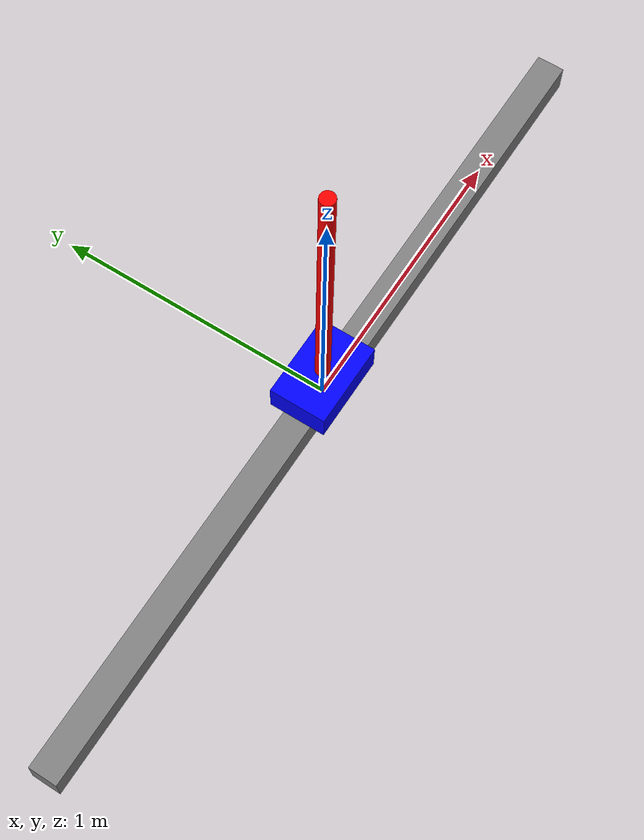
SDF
<?xml version="1.0" ?>
<sdf version="1.8">
    <model name="cart_pole">
        <link name="rail">
            <pose>0 0 0 0 0 0</pose>
            <inertial>
                <mass>1.0</mass>
                <inertia>
                    <ixx>0.01</ixx>
                    <ixy>0</ixy>
                    <ixz>0</ixz>
                    <iyy>0.01</iyy>
                    <iyz>0</iyz>
                    <izz>0.01</izz>
                </inertia>
            </inertial>
            <visual name="rail_visual">
                <geometry>
                    <box>
                        <size>3.0 0.1 0.1</size>
                    </box>
                </geometry>
                <material>
                    <ambient>0.5 0.5 0.5 1</ambient>
                    <diffuse>0.5 0.5 0.5 1</diffuse>
                    <specular>0.1 0.1 0.1 1</specular>
                </material>
            </visual>
            <collision name="rail_collision">
                <geometry>
                    <box>
                        <size>3.0 0.1 0.1</size>
                    </box>
                </geometry>
            </collision>
        </link>

        <link name="cart">
            <pose relative_to="rail">0 0 0.1 0 0 0</pose>
            <inertial>
                <mass>1.0</mass>
                <inertia>
                    <ixx>0.01</ixx>
                    <ixy>0</ixy>
                    <ixz>0</ixz>
                    <iyy>0.01</iyy>
                    <iyz>0</iyz>
                    <izz>0.01</izz>
                </inertia>
            </inertial>
            <visual name="cart_visual">
                <geometry>
                    <box>
                        <size>0.3 0.2 0.1</size>
                    </box>
                </geometry>
                <material>
                    <ambient>0 0 1 1</ambient>
                    <diffuse>0 0 1 1</diffuse>
                    <specular>0.1 0.1 0.1 1</specular>
                </material>
            </visual>
            <collision name="cart_collision">
                <geometry>
                    <box>
                        <size>0.3 0.2 0.1</size>
                    </box>
                </geometry>
            </collision>
        </link>

        <link name="pole">
            <pose relative_to="cart">0 0 0.05 0 0 0</pose>
            <inertial>
                <pose>0 0 0.5 0 0 0</pose>
                <mass>0.1</mass>
                <inertia>
                    <ixx>0.0083</ixx>
                    <ixy>0</ixy>
                    <ixz>0</ixz>
                    <iyy>0.0083</iyy>
                    <iyz>0</iyz>
                    <izz>0.001</izz>
                </inertia>
            </inertial>
            <visual name="pole_visual">
                <pose>0 0 0.5 0 0 0</pose>
                <geometry>
                    <cylinder>
                        <radius>0.025</radius>
                        <length>1.0</length>
                    </cylinder>
                </geometry>
                <material>
                    <ambient>1 0 0 1</ambient>
                    <diffuse>1 0 0 1</diffuse>
                    <specular>0.1 0.1 0.1 1</specular>
                </material>
            </visual>
            <collision name="pole_collision">
                <pose>0 0 0.5 0 0 0</pose>
                <geometry>
                    <cylinder>
                        <radius>0.025</radius>
                        <length>1.0</length>
                    </cylinder>
                </geometry>
            </collision>
        </link>

        <joint name="world_fixed" type="fixed">
            <parent>world</parent>
            <child>rail</child>
        </joint>

        <joint name="cart_slider" type="prismatic">
            <parent>rail</parent>
            <child>cart</child>
            <axis>
                <xyz>1 0 0</xyz>
                <limit>
                    <lower>-1.5</lower>
                    <upper>1.5</upper>
                    <effort>1000.0</effort>
                    <velocity>1000.0</velocity>
                </limit>
                <dynamics>
                    <damping>0.1</damping>
                    <friction>0.1</friction>
                </dynamics>
            </axis>
        </joint>

        <joint name="pole_hinge" type="revolute">
            <parent>cart</parent>
            <child>pole</child>
            <axis>
                <xyz>0 1 0</xyz>
                <limit>
                    <lower>-3.14159</lower>
                    <upper>3.14159</upper>
                    <effort>1000.0</effort>
                    <velocity>1000.0</velocity>
                    <!-- add init position here -->
                </limit>
                <dynamics>
                    <damping>0.1</damping>
                    <friction>0.1</friction>
                </dynamics>
            </axis>
        </joint>

        <!-- Joint control plugin -->
        <plugin
            filename="gz-sim-joint-controller-system"
            name="gz::sim::systems::JointController">
            <joint_name>cart_slider</joint_name>
            <use_force_commands>true</use_force_commands>
        </plugin>

        <!-- Set initial pose -->
        <plugin
            filename="gz-sim-pose-publisher-system"
            name="gz::sim::systems::PosePublisher">
            <publish_link_pose>true</publish_link_pose>
            <use_pose_vector_msg>true</use_pose_vector_msg>
            <update_rate>100</update_rate>
        </plugin>

        <plugin
            filename="gz-sim-joint-state-publisher-system"
            name="gz::sim::systems::JointStatePublisher">
            <joint_name>cart_slider</joint_name>
            <joint_name>pole_hinge</joint_name>
        </plugin>
    </model>
</sdf>
